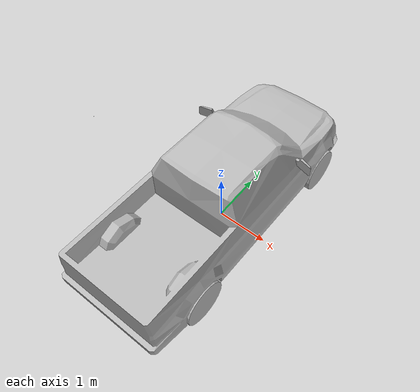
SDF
<?xml version='1.0'?>
<sdf version="1.4">
  <model name="pickup">
    <pose>0 0 0 0 0 0</pose>
    <static>false</static>
    <link name="pickup">
      <pose>0 0 0 0 0 0</pose>
      <inertial>
        <mass>10</mass>
        <inertia>
          <ixx>1</ixx>
          <ixy>0.0</ixy>
          <iyy>1</iyy>
          <ixz>0.0</ixz>
          <iyz>0.0</iyz>
          <izz>1.0</izz>
        </inertia>
      </inertial>
      <collision name="collision">
        <geometry>
          <mesh>
            <uri>model://pickup/meshes/pickup.dae</uri>
          </mesh>
        </geometry>
      </collision>
      <visual name="visual">
        <geometry>
          <mesh>
            <uri>model://pickup/meshes/pickup.dae</uri>
          </mesh>
        </geometry>
      </visual>

      <visual name='back_cam'>
        <pose>-3.45000 0.00000 0.5000000 0.000000 -0.000000 3.1416</pose>
        <geometry>
          <sphere>
            <radius>.005</radius>
          </sphere>
        </geometry>
      </visual>
      <sensor name='cam_f1_back' type='camera'>
        <pose>-3.45000 0.00000 0.5000000 0.000000 -0.000000 3.1416</pose>
        <update_rate>20.000000</update_rate>
        <camera name='cback'>
          <horizontal_fov>1.570000</horizontal_fov>
          <image>
            <width>640</width>
            <height>480</height>
            <format>R8G8B8</format>
          </image>
          <clip>
            <near>0.100000</near>
            <far>15.000000</far>
          </clip>
        </camera>
        <plugin name="camera_controller_back" filename="libgazebo_ros_camera.so">
          <alwaysOn>true</alwaysOn>
          <updateRate>0.0</updateRate>
          <cameraName>F1ROS/cameraB</cameraName>
          <imageTopicName>image_raw</imageTopicName>
          <cameraInfoTopicName>camera_info</cameraInfoTopicName>
          <frameName>camera_top_body_back</frameName>
          <hackBaseline>0.07</hackBaseline>
          <distortionK1>0.0</distortionK1>
          <distortionK2>0.0</distortionK2>
          <distortionK3>0.0</distortionK3>
          <distortionT1>0.0</distortionT1>
          <distortionT2>0.0</distortionT2>
        </plugin>
      </sensor>

    </link>

    <plugin name="object_controller" filename="libgazebo_ros_planar_move.so">
      <commandTopic>F1ROS/cmd_vel</commandTopic>
      <odometryTopic>F1ROS/odom</odometryTopic>
      <odometryFrame>odom</odometryFrame>
      <odometryRate>20.0</odometryRate>
      <robotBaseFrame>xf1</robotBaseFrame>
    </plugin>
  </model>
</sdf>
